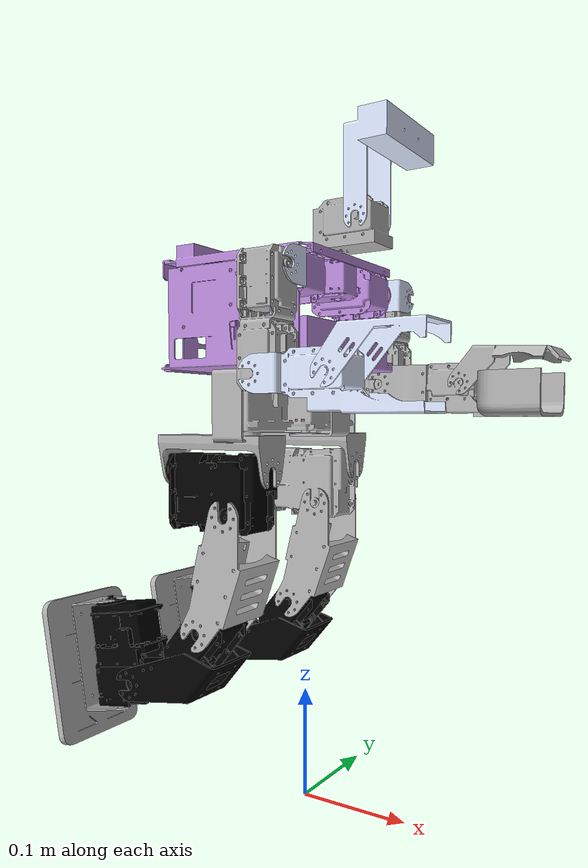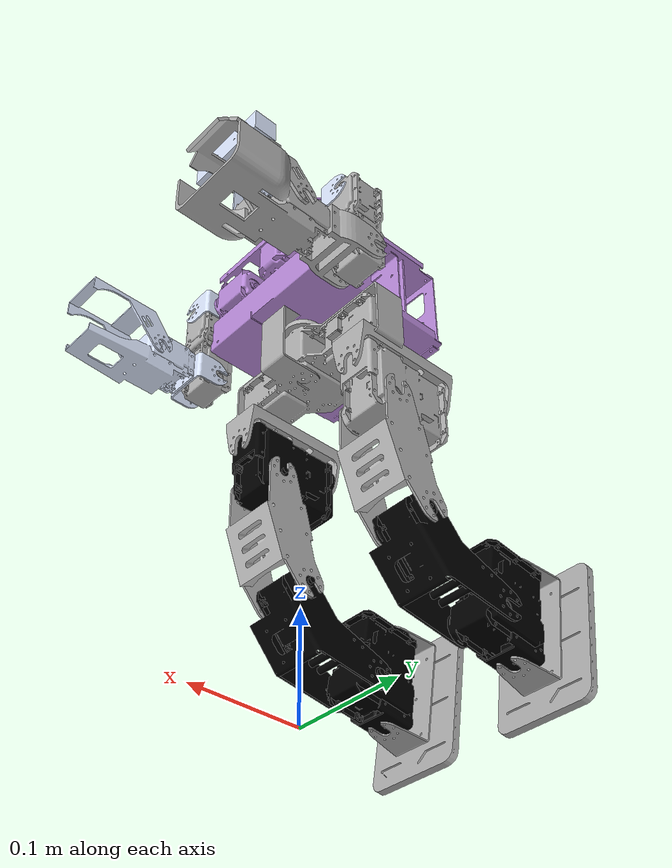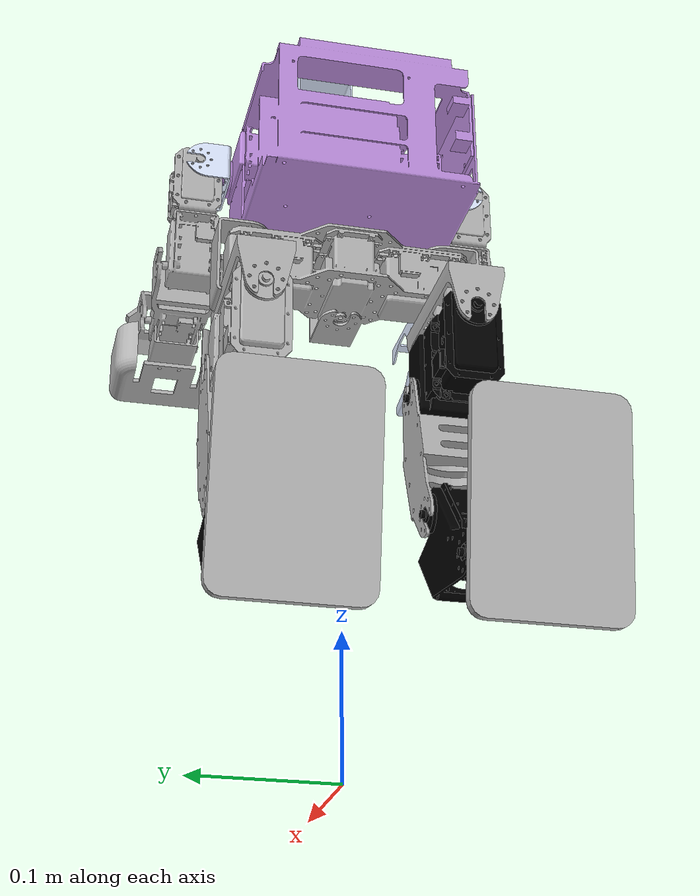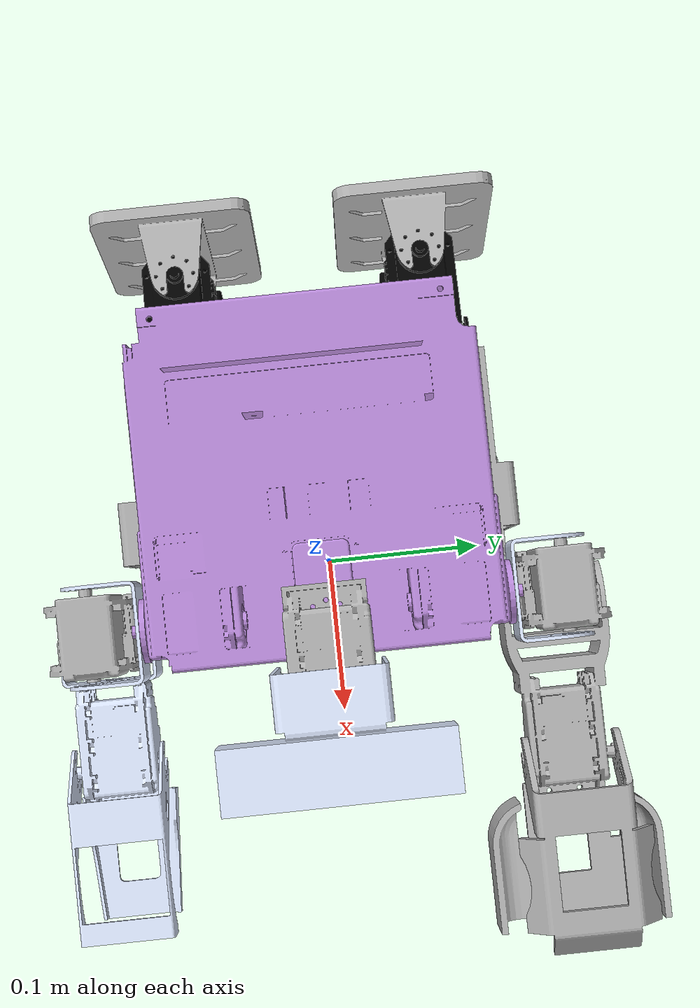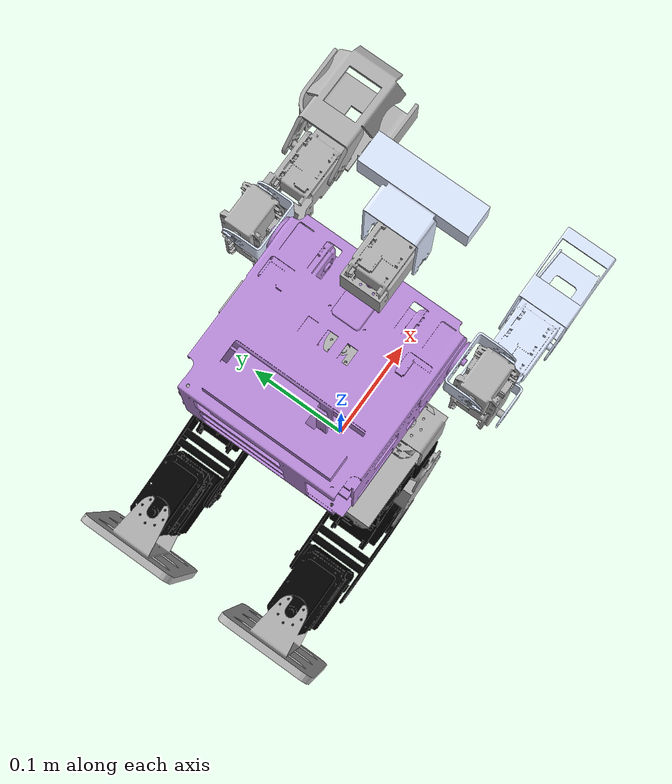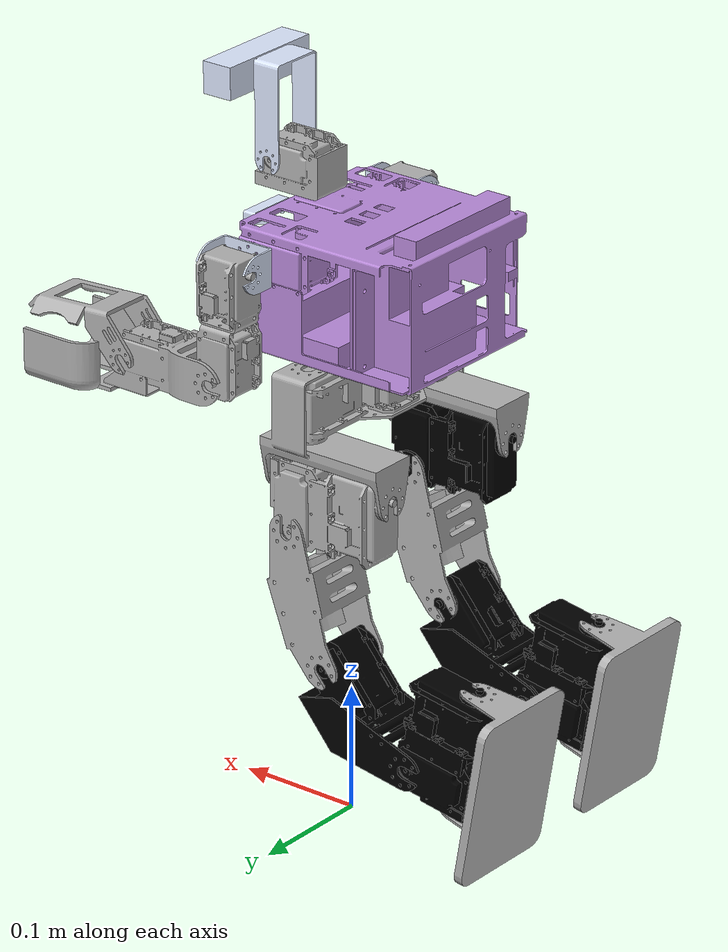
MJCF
<?xml version='1.0' encoding='utf-8'?>
<mujoco model="jandi_URDF">
  <!--Generated from jandi.xml by disabling all visual mesh collisions and adding only URDF collision geoms: base box, RL3/RL4/LL3/LL4 boxes, RL6/LL6 mesh feet. MuJoCo box size is half of URDF box size.-->
  <compiler angle="radian" meshdir="../jandi/meshes" />
  <asset>
    <mesh name="base_link" file="base_link.STL" />
    <mesh name="RH1_link" file="RH1_link.STL" />
    <mesh name="RH2_link" file="RH2_link.STL" />
    <mesh name="RH3_link" file="RH3_link.STL" />
    <mesh name="RH4_link" file="RH4_link.STL" />
    <mesh name="LH1_link" file="LH1_link.STL" />
    <mesh name="LH2_link" file="LH2_link.STL" />
    <mesh name="LH3_link" file="LH3_link.STL" />
    <mesh name="LH4_link" file="LH4_link.STL" />
    <mesh name="waist_link" file="waist_link.STL" />
    <mesh name="RL1_link" file="RL1_link.STL" />
    <mesh name="RL2_link" file="RL2_link.STL" />
    <mesh name="RL3_link" file="RL3_link.STL" />
    <mesh name="RL4_link" file="RL4_link.STL" />
    <mesh name="RL5_link" file="RL5_link.STL" />
    <mesh name="RL6_link" file="RL6_link.STL" />
    <mesh name="LL1_link" file="LL1_link.STL" />
    <mesh name="LL2_link" file="LL2_link.STL" />
    <mesh name="LL3_link" file="LL3_link.STL" />
    <mesh name="LL4_link" file="LL4_link.STL" />
    <mesh name="LL5_link" file="LL5_link.STL" />
    <mesh name="LL6_link" file="LL6_link.STL" />
    <mesh name="neck1_link" file="neck1_link.STL" />
    <mesh name="neck2_link" file="neck2_link.STL" />
  </asset>
  <worldbody>
    <body name="base_link" pos="0 0 0.39">
      <freejoint name="floating_base_joint" />
      <geom type="mesh" rgba="0.729412 0.545098 0.858824 1" mesh="base_link" name="base_link_visual_00" contype="0" conaffinity="0" group="1" />
      <geom pos="0.030285 -0.085 0.071717" quat="0.499998 0.5 0.5 -0.500002" type="mesh" rgba="0.866667 0.909804 1 1" mesh="RH1_link" name="RH1_link_visual_01" contype="0" conaffinity="0" group="1" />
      <geom pos="0.00805993 -0.103582 0.0717171" quat="-2.59734e-06 0.707105 -2.59735e-06 -0.707108" type="mesh" rgba="0.698039 0.698039 0.698039 1" mesh="RH2_link" name="RH2_link_visual_02" contype="0" conaffinity="0" group="1" />
      <geom pos="0.0306595 -0.126182 -0.010114" quat="-2.59735e-06 2.59736e-06 0.707108 -0.707105" type="mesh" rgba="0.866667 0.909804 1 1" mesh="RH3_link" name="RH3_link_visual_03" contype="0" conaffinity="0" group="1" />
      <geom pos="0.0946575 -0.128058 -0.010114" quat="-2.59735e-06 2.59736e-06 0.707108 -0.707105" type="mesh" rgba="0.866667 0.909804 1 1" mesh="RH4_link" name="RH4_link_visual_04" contype="0" conaffinity="0" group="1" />
      <geom pos="0.0298 0.085 0.071822" quat="0.499998 -0.5 0.5 0.500002" type="mesh" rgba="0.866667 0.909804 1 1" mesh="LH1_link" name="LH1_link_visual_05" contype="0" conaffinity="0" group="1" />
      <geom pos="0.00757493 0.103582 0.0718221" quat="0.707105 0 0.707108 0" type="mesh" rgba="0.698039 0.698039 0.698039 1" mesh="LH2_link" name="LH2_link_visual_06" contype="0" conaffinity="0" group="1" />
      <geom pos="0.0301746 0.126182 -0.010009" quat="0.707105 -0.707108 0 0" type="mesh" rgba="0.698039 0.698039 0.698039 1" mesh="LH3_link" name="LH3_link_visual_07" contype="0" conaffinity="0" group="1" />
      <geom pos="0.110811 0.127532 -0.010009" quat="0.707105 -0.707108 0 0" type="mesh" rgba="0.698039 0.698039 0.698039 1" mesh="LH4_link" name="LH4_link_visual_08" contype="0" conaffinity="0" group="1" />
      <geom type="mesh" rgba="0.698039 0.698039 0.698039 1" mesh="waist_link" name="waist_link_visual_09" contype="0" conaffinity="0" group="1" />
      <geom pos="0.032999 6.1e-05 0.099922" quat="1 0 0 0" type="mesh" rgba="0.698039 0.698039 0.698039 1" mesh="neck1_link" name="neck1_link_visual_10" contype="0" conaffinity="0" group="1" />
      <geom pos="0.060999 -0.022539 0.122122" quat="0.499998 0.5 -0.5 0.500002" type="mesh" rgba="0.866667 0.909804 1 1" mesh="neck2_link" name="neck2_link_visual_11" contype="0" conaffinity="0" group="1" />
      <body name="RL1_link" pos="-0.0155 -0.07175 -0.0616" quat="-2.59734e-06 -0.707105 0.707108 2.59735e-06">
        <inertial pos="0.00308282 0.0200432 -0.00436233" quat="0.707932 0.706208 0.00525874 -0.00868888" mass="0.0918438" diaginertia="0.000113221 0.000110954 2.89016e-05" />
        <joint name="RL1_joint" pos="0 0 0" axis="0 0 -1" range="-0.35 0.35" actuatorfrcrange="-20 20" />
        <geom type="mesh" rgba="0.698039 0.698039 0.698039 1" mesh="RL1_link" name="RL1_link_visual_12" contype="0" conaffinity="0" group="1" />
        <body name="RL2_link" pos="0 0.07904 0.0257" quat="0.500006 0.499995 0.500007 -0.499992">
          <inertial pos="-0.0173026 -0.00020773 0.0558843" quat="-0.024964 0.718973 7.03719e-05 0.69459" mass="0.400674" diaginertia="0.000164916 0.000162441 0.000100268" />
          <joint name="RL2_joint" pos="0 0 0" axis="0 0 1" range="-0.15 0.15" actuatorfrcrange="-20 20" />
          <geom type="mesh" rgba="0 0 0 1" mesh="RL2_link" name="RL2_link_visual_13" contype="0" conaffinity="0" group="1" />
          <body name="RL3_link" pos="-0.03589 -0.0308 0.07773" quat="-2.59734e-06 2.59735e-06 -0.707108 0.707105">
            <inertial pos="0.0574464 0.00427415 -0.0308" quat="0.419633 0.419633 0.569129 0.569129" mass="0.111251" diaginertia="8.45929e-05 6.9368e-05 2.6478e-05" />
            <joint name="RL3_joint" pos="0 0 0" axis="0 0 -1" range="0 1.3" actuatorfrcrange="-20 20" />
            <geom type="mesh" rgba="0.698039 0.698039 0.698039 1" mesh="RL3_link" name="RL3_link_visual_14" contype="0" conaffinity="0" group="1" />
            <body name="RL4_link" pos="0.10025 0.031029 0" quat="-3.45168e-06 0.939693 0.342019 -1.25631e-06">
              <inertial pos="0.0244453 0.0027888 0.0304596" quat="0.59847 0.535994 0.405028 0.436459" mass="0.246664" diaginertia="0.000154735 0.000116686 9.46235e-05" />
              <joint name="RL4_joint" pos="0 0 0" axis="0 0 1" range="-0.55 0.1" actuatorfrcrange="-20 20" />
              <geom type="mesh" rgba="0 0 0 1" mesh="RL4_link" name="RL4_link_visual_15" contype="0" conaffinity="0" group="1" />
              <body name="RL5_link" pos="0.093765 -0.022536 0" quat="-3.44588e-06 0.938111 -0.346334 1.27215e-06">
                <inertial pos="0.0187007 0.021849 -0.030589" quat="0.489174 0.49331 0.524016 0.492708" mass="0.400674" diaginertia="0.000164914 0.000162442 0.000100269" />
                <joint name="RL5_joint" pos="0 0 0" axis="0 0 -1" range="0 1.15" actuatorfrcrange="-20 20" />
                <geom type="mesh" rgba="0 0 0 1" mesh="RL5_link" name="RL5_link_visual_16" contype="0" conaffinity="0" group="1" />
                <body name="RL6_link" pos="0.03611 0.07773 -0.0308" quat="0.707105 -0.707108 0 0">
                  <inertial pos="0.0349312 0.000145699 -0.0614858" quat="1 -1.25177e-05 -0.000149232 4.87195e-05" mass="0.142744" diaginertia="0.0002987 0.000219374 8.95059e-05" />
                  <joint name="RL6_joint" pos="0 0 0" axis="0 0 -1" range="-0.45 0.45" actuatorfrcrange="-20 20" />
                  <geom type="mesh" rgba="0.698039 0.698039 0.698039 1" mesh="RL6_link" name="RL6_link_visual_17" contype="0" conaffinity="0" group="1" />
                  <geom name="RL6_foot_mesh_collision" type="mesh" mesh="RL6_link" contype="1" conaffinity="1" group="3" rgba="1 0.5 0 0.30" friction="1.5 0.005 0.0001" condim="3" />
                </body>
              </body>
              <geom name="RL4_collision_box" type="box" pos="0.058 -0.0023 0.0294" size="0.0425 0.026 0.021" contype="1" conaffinity="1" group="3" rgba="1 0 0 0.25" friction="1.5 0.005 0.0001" condim="3" />
            </body>
            <geom name="RL3_collision_box" type="box" pos="0.045 0.0141 -0.0308" size="0.0425 0.024 0.02" contype="1" conaffinity="1" group="3" rgba="1 0 0 0.25" friction="1.5 0.005 0.0001" condim="3" />
          </body>
        </body>
      </body>
      <body name="LL1_link" pos="-0.016 0.07125 -0.0616" quat="-2.59734e-06 0.707105 -0.707108 2.59735e-06">
        <inertial pos="-0.00308284 0.0200432 -0.00436233" quat="0.707932 0.706208 -0.00526212 0.00868484" mass="0.0918438" diaginertia="0.000113221 0.000110954 2.89016e-05" />
        <joint name="LL1_joint" pos="0 0 0" axis="0 0 -1" range="-0.35 0.35" actuatorfrcrange="-20 20" />
        <geom type="mesh" rgba="0.698039 0.698039 0.698039 1" mesh="LL1_link" name="LL1_link_visual_18" contype="0" conaffinity="0" group="1" />
        <body name="LL2_link" pos="0 0.07904 0.0257" quat="0.500009 -0.49999 -0.500009 -0.499992">
          <inertial pos="0.0173026 0.00021103 -0.055881" quat="-0.0221391 0.718934 0.00292356 0.69472" mass="0.400674" diaginertia="0.000164914 0.000162442 0.000100269" />
          <joint name="LL2_joint" pos="0 0 0" axis="0 0 -1" range="-0.15 0.15" actuatorfrcrange="-20 20" />
          <geom type="mesh" rgba="0.698039 0.698039 0.698039 1" mesh="LL2_link" name="LL2_link_visual_19" contype="0" conaffinity="0" group="1" />
          <body name="LL3_link" pos="0.03589 0.0308 -0.07773" quat="0.707105 -0.707108 0 0">
            <inertial pos="0.0574464 -0.00427415 -0.0308" quat="0.569129 0.569129 0.419633 0.419633" mass="0.111251" diaginertia="8.45929e-05 6.9368e-05 2.6478e-05" />
            <joint name="LL3_joint" pos="0 0 0" axis="0 0 -1" range="-1.3 0" actuatorfrcrange="-20 20" />
            <geom type="mesh" rgba="0.698039 0.698039 0.698039 1" mesh="LL3_link" name="LL3_link_visual_20" contype="0" conaffinity="0" group="1" />
            <body name="LL4_link" pos="0.10025 -0.031029 -0.0018" quat="0.939693 0 0 -0.342019">
              <inertial pos="0.0244453 0.00279415 -0.0304606" quat="0.535957 0.598544 0.436397 0.405035" mass="0.246664" diaginertia="0.00015474 0.000116686 9.46193e-05" />
              <joint name="LL4_joint" pos="0 0 0" axis="0 0 -1" range="-0.1 0.55" actuatorfrcrange="-20 20" />
              <geom type="mesh" rgba="0 0 0 1" mesh="LL4_link" name="LL4_link_visual_21" contype="0" conaffinity="0" group="1" />
              <body name="LL5_link" pos="0.093765 -0.022536 0" quat="0.938111 0 0 -0.346334">
                <inertial pos="0.0187007 -0.0218457 -0.0305923" quat="0.490738 0.526041 0.491201 0.4911" mass="0.400674" diaginertia="0.000164916 0.000162441 0.000100268" />
                <joint name="LL5_joint" pos="0 0 0" axis="0 0 -1" range="-1.15 0" actuatorfrcrange="-20 20" />
                <geom type="mesh" rgba="0 0 0 1" mesh="LL5_link" name="LL5_link_visual_22" contype="0" conaffinity="0" group="1" />
                <body name="LL6_link" pos="0.03611 -0.07773 -0.0308" quat="0.707105 0.707108 0 0">
                  <inertial pos="0.0349312 0.000145699 -0.0614858" quat="1 -1.25177e-05 -0.000149232 4.87195e-05" mass="0.142744" diaginertia="0.0002987 0.000219374 8.95059e-05" />
                  <joint name="LL6_joint" pos="0 0 0" axis="0 0 -1" range="-0.45 0.45" actuatorfrcrange="-20 20" />
                  <geom type="mesh" rgba="0.698039 0.698039 0.698039 1" mesh="LL6_link" name="LL6_link_visual_23" contype="0" conaffinity="0" group="1" />
                  <geom name="LL6_foot_mesh_collision" type="mesh" mesh="LL6_link" contype="1" conaffinity="1" group="3" rgba="0 0.5 1 0.30" friction="1.5 0.005 0.0001" condim="3" />
                </body>
              </body>
              <geom name="LL4_collision_box" type="box" pos="0.058 -0.0023 -0.0294" size="0.0425 0.026 0.021" contype="1" conaffinity="1" group="3" rgba="0 0 1 0.25" friction="1.5 0.005 0.0001" condim="3" />
            </body>
            <geom name="LL3_collision_box" type="box" pos="0.045 -0.0141 -0.0308" size="0.0425 0.024 0.02" contype="1" conaffinity="1" group="3" rgba="0 0 1 0.25" friction="1.5 0.005 0.0001" condim="3" />
          </body>
        </body>
      </body>
      <geom name="base_collision_box" type="box" pos="-0.02866 0 0.05376" size="0.07766 0.085 0.05506" contype="1" conaffinity="1" group="3" rgba="0.8 0.2 0.2 0.25" friction="1.5 0.005 0.0001" condim="3" />
    </body>
  </worldbody>
  <actuator>
    <motor name="RL1_joint" joint="RL1_joint" ctrllimited="true" ctrlrange="-20 20" />
    <motor name="RL2_joint" joint="RL2_joint" ctrllimited="true" ctrlrange="-20 20" />
    <motor name="RL3_joint" joint="RL3_joint" ctrllimited="true" ctrlrange="-20 20" />
    <motor name="RL4_joint" joint="RL4_joint" ctrllimited="true" ctrlrange="-20 20" />
    <motor name="RL5_joint" joint="RL5_joint" ctrllimited="true" ctrlrange="-20 20" />
    <motor name="RL6_joint" joint="RL6_joint" ctrllimited="true" ctrlrange="-20 20" />
    <motor name="LL1_joint" joint="LL1_joint" ctrllimited="true" ctrlrange="-20 20" />
    <motor name="LL2_joint" joint="LL2_joint" ctrllimited="true" ctrlrange="-20 20" />
    <motor name="LL3_joint" joint="LL3_joint" ctrllimited="true" ctrlrange="-20 20" />
    <motor name="LL4_joint" joint="LL4_joint" ctrllimited="true" ctrlrange="-20 20" />
    <motor name="LL5_joint" joint="LL5_joint" ctrllimited="true" ctrlrange="-20 20" />
    <motor name="LL6_joint" joint="LL6_joint" ctrllimited="true" ctrlrange="-20 20" />
  </actuator>
</mujoco>
